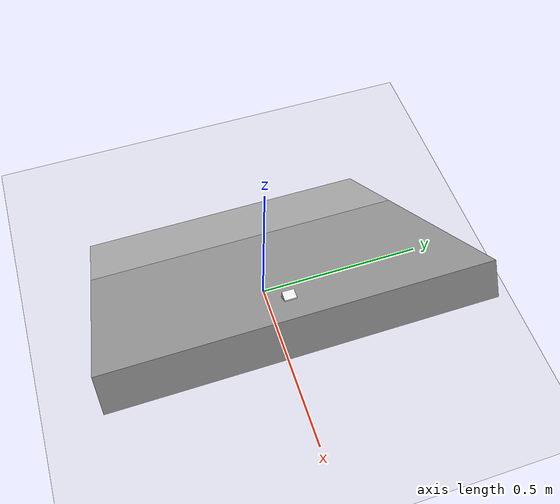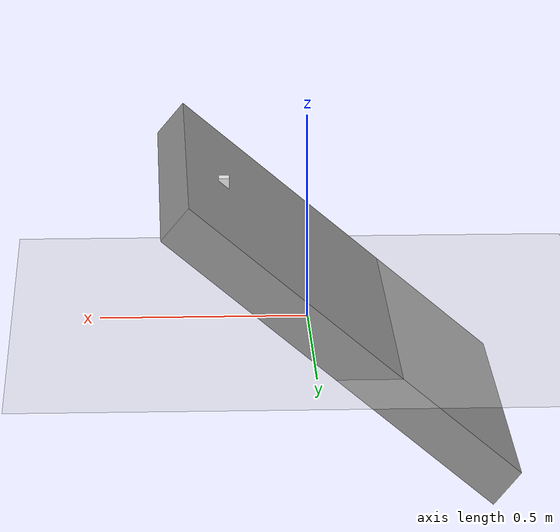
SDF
<?xml version="1.0" ?>
<sdf version="1.6">
  <world name="panda_pick_and_place">
    <!--A global light source-->
    <include>
      <uri>model://sun</uri>
    </include>
    <!--A ground plane-->
    <include>
      <uri>model://ground_plane</uri>
    </include>
    <!--A inclined plane-->
    <include>
      <uri>model://inclined</uri>
      <pose>-0.06 0.000584 0.0 0 -0 0</pose>
      <static>1</static>
    </include>
    <!--A cube-->
    <include>
      <uri>model://cube</uri>
      <pose>0.1 0.0 0.286 0 -0 0</pose>
    </include>
  </world>
</sdf>

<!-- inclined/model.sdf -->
<sdf version='1.6'>
  <model name='inclined'>
    <link name='link'>
      <!-- Adjusted pose for inclination: X Y Z Roll Pitch Yaw, where Pitch is used to create the inclination -->
      <pose>0 0 0.05 0 -0.34906585 0</pose> <!-- Reversed tilt of approx. -20 degrees -->
      <inertial>
        <pose>0 0 0 0 -0 0</pose>
        <mass>10</mass>
        <inertia>
          <ixx>0.166667</ixx>
          <ixy>0</ixy>
          <ixz>0</ixz>
          <iyy>0.166667</iyy>
          <iyz>0</iyz>
          <izz>0.166667</izz>
        </inertia>
      </inertial>
      <self_collide>0</self_collide>
      <enable_wind>0</enable_wind>
      <kinematic>0</kinematic>
      <visual name='visual'>
        <!-- Adjusted visual to match the inclined pose -->
        <pose>0 0 0 0 -0.34906585 0</pose>
        <geometry>
          <box>
            <!-- Optionally adjust size to more closely resemble a plane -->
            <size>1 1 0.1</size>
          </box>
        </geometry>
        <material>
          <script>
            <name>Gazebo/Grey</name>
            <uri>file://media/materials/scripts/gazebo.material</uri>
          </script>
          <shader type='pixel'/>
        </material>
        <!-- Transparency and shadow casting remain unchanged -->
        <transparency>0</transparency>
        <cast_shadows>1</cast_shadows>
      </visual>
      <collision name='collision'>
        <!-- Collision pose matches visual for consistency -->
        <pose>0 0 0 0 -0.34906585 0</pose>
        <geometry>
          <box>
            <!-- Matching size for collision detection -->
            <size>1 1 0.1</size>
          </box>
        </geometry>
        <!-- Surface properties (friction, bounce, contact) remain unchanged -->
        <surface>
          <friction>
            <ode>
              <mu>1</mu>
              <mu2>1</mu2>
              <fdir1>0 0 0</fdir1>
              <slip1>0</slip1>
              <slip2>0</slip2>
            </ode>
            <torsional>
              <coefficient>1</coefficient>
              <patch_radius>0</patch_radius>
              <surface_radius>0</surface_radius>
              <use_patch_radius>1</use_patch_radius>
              <ode>
                <slip>0</slip>
              </ode>
            </torsional>
          </friction>
          <bounce>
            <restitution_coefficient>0</restitution_coefficient>
            <threshold>1e+06</threshold>
          </bounce>
          <contact>
            <collide_without_contact>0</collide_without_contact>
            <collide_without_contact_bitmask>1</collide_without_contact_bitmask>
            <collide_bitmask>1</collide_bitmask>
            <ode>
              <soft_cfm>0</soft_cfm>
              <soft_erp>0.2</soft_erp>
              <kp>1e+13</kp>
              <kd>1</kd>
              <max_vel>0.01</max_vel>
              <min_depth>0</min_depth>
            </ode>
            <bullet>
              <split_impulse>1</split_impulse>
              <split_impulse_penetration_threshold>-0.01</split_impulse_penetration_threshold>
              <soft_cfm>0</soft_cfm>
              <soft_erp>0.2</soft_erp>
              <kp>1e+13</kp>
              <kd>1</kd>
            </bullet>
          </contact>
        </surface>
      </collision>
    </link>
    <static>1</static>
    <allow_auto_disable>1</allow_auto_disable>
  </model>
</sdf>

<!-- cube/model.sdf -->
<sdf version='1.6'>
  <model name='cube'>
    <link name='link'>
      <!-- Set the pose of the cube so that it sits on top of the inclined plane -->
      <!-- The z-value is set to half the height of the cube to place it resting on the plane -->
      <!-- Adjust x and y values to position the cube where we want it on the plane -->
      <pose>0.1 0.0 0.032 0 -0 0</pose>
        <!-- Inertial pose generally stays as is unless you have a specific reason to change it -->
      <self_collide>0</self_collide>
      <kinematic>0</kinematic>
      <enable_wind>0</enable_wind>
      <visual name='visual'>
        <geometry>
          <box>
            <size>0.025 0.032 0.064</size>
          </box>
        </geometry>
        <material>
          <script>
            <uri>file://media/materials/scripts/gazebo.material</uri>
            <name>Gazebo/White</name>
          </script>
        </material>
        <!-- Visual pose generally stays as is unless you have a specific reason to change it -->
        <pose>0 0 0 0 -0 0</pose>
        <transparency>0</transparency>
        <cast_shadows>1</cast_shadows>
      </visual>
      <collision name='collision'>
        <pose>0 0 0 0 -0 0</pose>
        <geometry>
          <box>
            <size>0.025 0.032 0.064</size>
          </box>
        </geometry>
        <surface>
          <friction>
            <ode>
              <mu>0.6</mu>
              <mu2>0.6</mu2>
            </ode>
          </friction>
          <!-- Other collision properties remain unchanged -->
        </surface>
      </collision>
    </link>
    <!-- The static tag should be '0' for movable objects like a stone -->
    <static>0</static>
    <allow_auto_disable>1</allow_auto_disable>
  </model>
</sdf>
